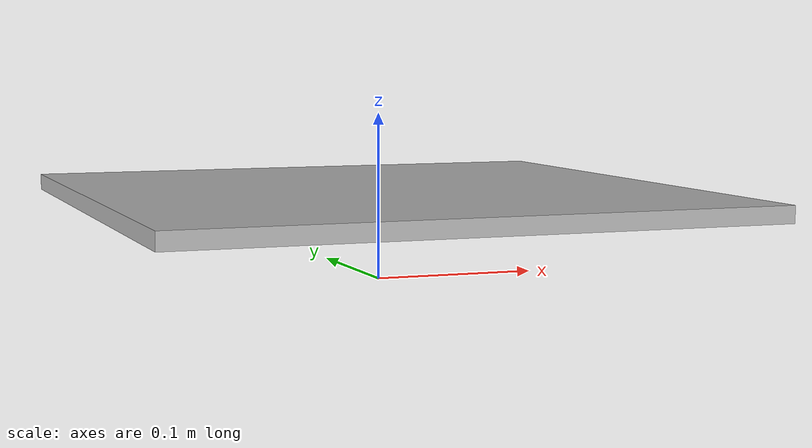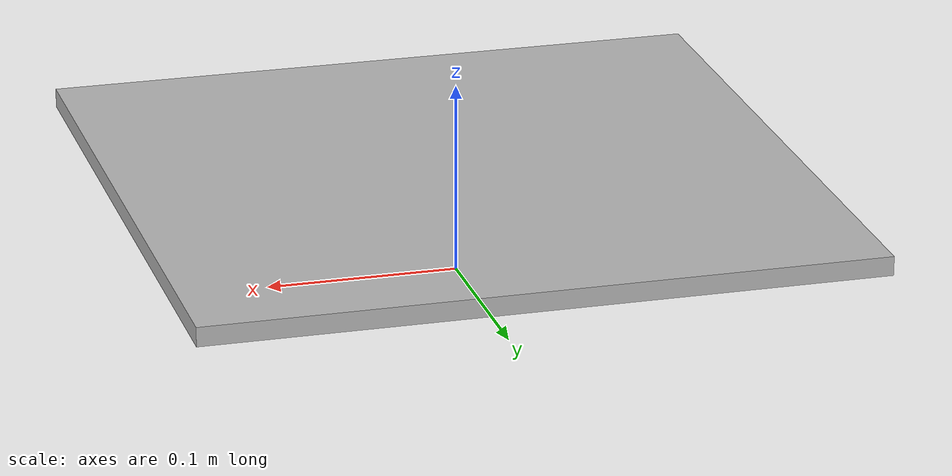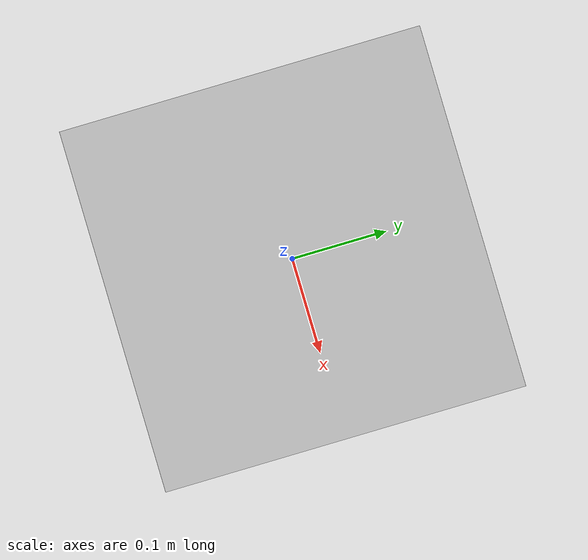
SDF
<?xml version='1.0'?>
<sdf version="1.4">
  <model name="aruco_marker_6x6_250_2">
    <pose>0 0 0.05 0 0 0</pose>
    <static>true</static>
    <link name="link">
      <inertial>
        <mass>1.0</mass>
        <inertia> <!-- inertias are tricky to compute -->
          <!-- http://gazebosim.org/tutorials?tut=inertia&cat=build_robot -->
          <ixx>0.083</ixx>       <!-- for a box: ixx = 0.083 * mass * (y*y + z*z) -->
          <ixy>0.0</ixy>         <!-- for a box: ixy = 0 -->
          <ixz>0.0</ixz>         <!-- for a box: ixz = 0 -->
          <iyy>0.083</iyy>       <!-- for a box: iyy = 0.083 * mass * (x*x + z*z) -->
          <iyz>0.0</iyz>         <!-- for a box: iyz = 0 -->
          <izz>0.083</izz>       <!-- for a box: izz = 0.083 * mass * (x*x + y*y) -->
        </inertia>
      </inertial>
      <collision name="collision">
        <geometry>
          <box>
            <size>0.35 0.35 0.01</size>
          </box>
        </geometry>
      </collision>
      <visual name="visual">
        <geometry>
          <box>
            <size>0.35 0.35 0.01</size>
          </box>
        </geometry>
        <material>
          <script>
            <name>ArucoMarker2</name>
            <uri>model://aruco_marker_6x6_250_2/materials/scripts/arucomarker2.material</uri>
          </script>
        </material>
      </visual>
    </link>
  </model>
</sdf>
